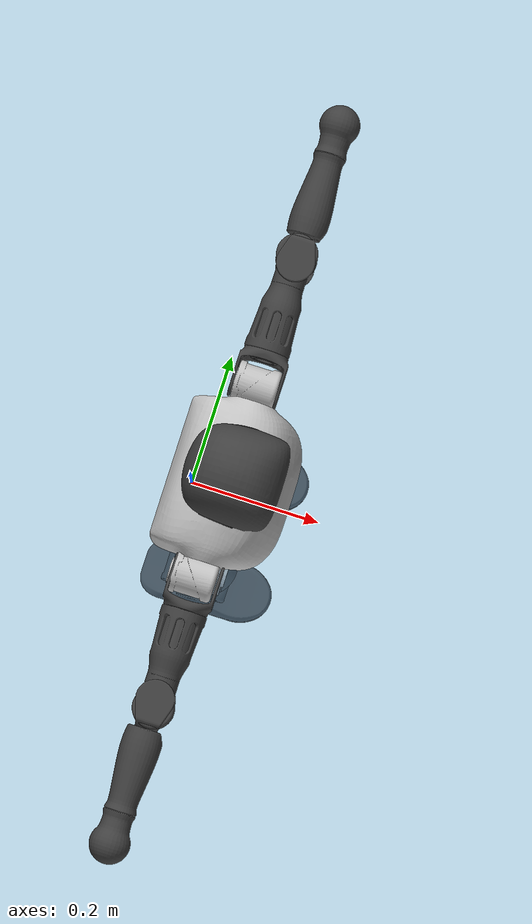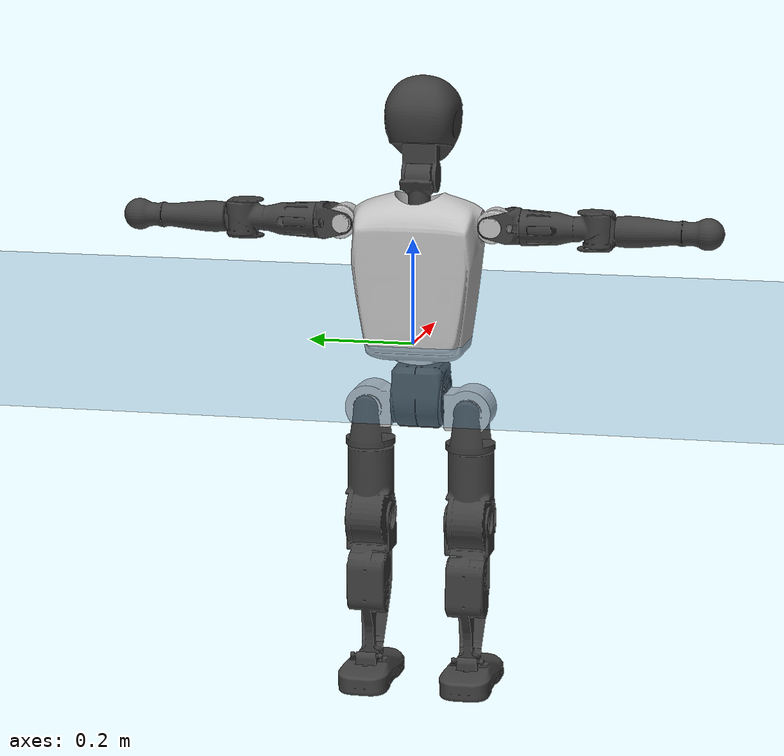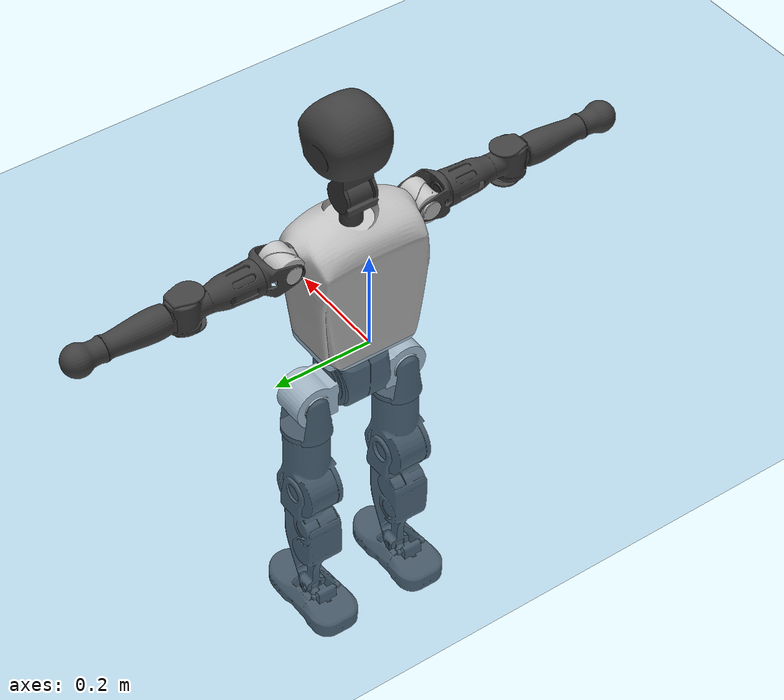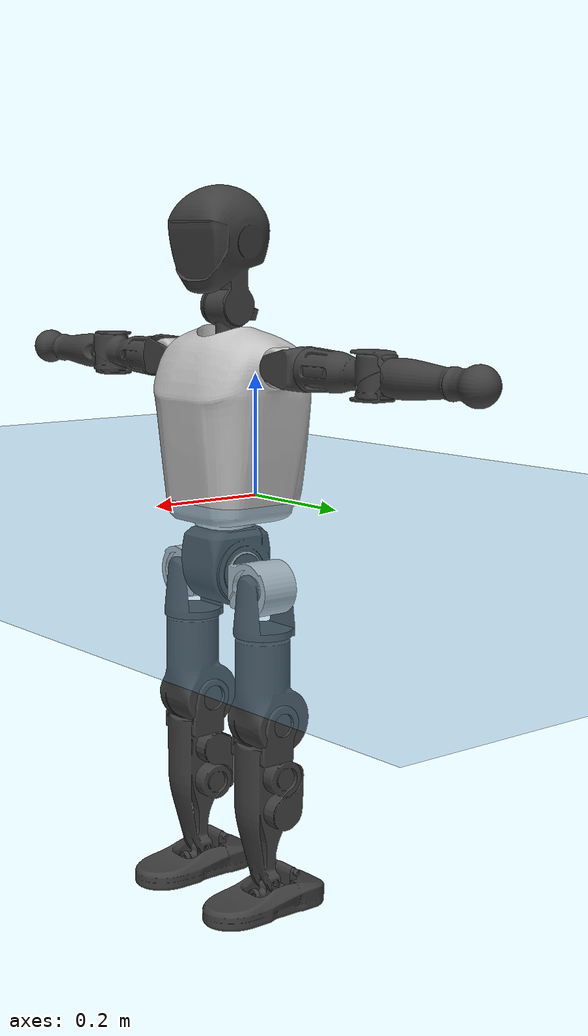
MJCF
<mujoco model="T1">
  <compiler angle="radian" assetdir="assets" balanceinertia="true" inertiafromgeom="false"/>

  <option timestep="0.005" density="1.2" viscosity="2e-05"/>

  <size nkey="1"/>

  <visual>
    <quality shadowsize="8192"/>
    <map shadowclip="0.5"/>
  </visual>

  <default>
    <default class="/">
      <joint armature="0.01" damping="0.01" frictionloss="0.1"/>
      <geom contype="0" conaffinity="0" group="1" solref="-1000 -80"/>
      <site size="0.01 0.005 0.005" group="5"/>
      <general forcelimited="true" biastype="affine" gainprm="25" biasprm="0 -25 -0.6"/>
      <default class="t1">
        <geom rgba="0.25 0.25 0.25 1"/>
        <default class="visual">
          <geom type="mesh" group="2"/>
        </default>
        <default class="collision">
          <geom group="3"/>
        </default>
        <default class="foot">
          <geom size="0.1115 0.05 0.015" type="box" condim="6" group="4" priority="1" solimp="0.015 1 0.015"/>
        </default>
        <default class="reward_collision_sphere">
          <geom group="5" rgba="1 0 0 1"/>
        </default>
      </default>
    </default>
  </default>

  <asset>
    <texture type="skybox" colorspace="auto" name="//unnamed_texture_0" builtin="gradient" rgb1="0.95 0.95 0.95" rgb2="0.95 0.95 0.95" width="100" height="600"/>
    <texture type="2d" colorspace="auto" name="texplane" builtin="checker" rgb1="0.345 0.575 0.748" rgb2="0.345 0.575 0.748" markrgb="1 1 1" width="512" height="512"/>
    <material name="MatPlane" class="/" texture="texplane" texuniform="true" texrepeat="2 2" specular="0.9"/>
    <mesh name="Trunk" class="/" file="Trunk.stl"/>
    <mesh name="H1" class="/" file="H1.stl"/>
    <mesh name="H2" class="/" file="H2.stl"/>
    <mesh name="AL1" class="/" file="AL1.stl"/>
    <mesh name="AL2" class="/" file="AL2.stl"/>
    <mesh name="AL3" class="/" file="AL3.stl"/>
    <mesh name="left_hand_link" class="/" file="left_hand_link.stl"/>
    <mesh name="AR1" class="/" file="AR1.stl"/>
    <mesh name="AR2" class="/" file="AR2.stl"/>
    <mesh name="AR3" class="/" file="AR3.stl"/>
    <mesh name="right_hand_link" class="/" file="right_hand_link.stl"/>
    <mesh name="Waist" class="/" file="Waist.stl"/>
    <mesh name="Hip_Pitch_Left" class="/" file="Hip_Pitch_Left.stl"/>
    <mesh name="Hip_Roll_Left" class="/" file="Hip_Roll_Left.stl"/>
    <mesh name="Hip_Yaw_Left" class="/" file="Hip_Yaw_Left.stl"/>
    <mesh name="Shank_Left" class="/" file="Shank_Left.stl"/>
    <mesh name="Ankle_Cross_Left" class="/" file="Ankle_Cross_Left.stl"/>
    <mesh name="left_foot_link" class="/" file="left_foot_link.stl"/>
    <mesh name="Hip_Pitch_Right" class="/" file="Hip_Pitch_Right.stl"/>
    <mesh name="Hip_Roll_Right" class="/" file="Hip_Roll_Right.stl"/>
    <mesh name="Hip_Yaw_Right" class="/" file="Hip_Yaw_Right.stl"/>
    <mesh name="Shank_Right" class="/" file="Shank_Right.stl"/>
    <mesh name="Ankle_Cross_Right" class="/" file="Ankle_Cross_Right.stl"/>
    <mesh name="right_foot_link" class="/" file="right_foot_link.stl"/>
  </asset>

  <worldbody>
    <geom name="floor" class="/" size="100 100 0.125" type="plane" group="0" material="MatPlane"/>
    <light name="toplight_shadow" class="/" pos="0 0 5" dir="0.0990148 0.0990148 -0.990148" type="directional" ambient="0.04 0.04 0.04" diffuse="0.55 0.55 0.55" specular="0.12 0.12 0.12"/>
    <light name="toplight_fill" class="/" pos="0 0 5" dir="0.0990148 0.0990148 -0.990148" type="directional" castshadow="false" ambient="0.04 0.04 0.04" diffuse="0.3 0.3 0.3" specular="0.08 0.08 0.08"/>
    <body name="trunk" childclass="t1" pos="8.08908e-05 6.91166e-05 0.00052729" quat="1 -0.000295237 -0.000300823 -0.000581245">
      <inertial pos="0.0514327 -5.00118e-05 0.107541" quat="0.999963 0.000836608 -0.00569407 0.00644364" mass="10.1691" diaginertia="0.0687317 0.0490613 0.0633339"/>
      <joint name="//unnamed_joint_0" type="free" armature="0" damping="0" frictionloss="0"/>
      <geom name="//unnamed_geom_1" class="visual" rgba="0.76 0.76 0.76 1" mesh="Trunk"/>
      <geom name="//unnamed_geom_2" class="collision" size="0.0717157 0.0956209 0.143431" pos="0.0560029 0 0.122499" type="box"/>
      <geom name="//unnamed_geom_3" class="reward_collision_sphere" size="0.109964" pos="0.0560029 0 0.102083"/>
      <geom name="//unnamed_geom_4" class="reward_collision_sphere" size="0.0143431" pos="0.0560029 0.0777256 0"/>
      <geom name="//unnamed_geom_5" class="reward_collision_sphere" size="0.0143431" pos="0.0560029 -0.0777256 0"/>
      <geom name="//unnamed_geom_6" class="reward_collision_sphere" size="0.0143431" pos="0.0560029 0.0978428 0.183749"/>
      <geom name="//unnamed_geom_7" class="reward_collision_sphere" size="0.0143431" pos="0.0560029 -0.0978428 0.183749"/>
      <site name="imu" pos="0.00632997 -0.000379076 -0.00591843" size="0.00956209"/>
      <camera name="track" pos="0 -1.82884 0" quat="0.707107 0.707107 0 0" mode="trackcom"/>
      <camera name="ego_camera" pos="0.113872 0 0.428748" quat="-0.5 -0.5 0.5 0.5"/>
      <body name="H1" pos="0.0557471 -0.000481903 0.245553" quat="1 0.000175778 -0.000129755 7.53234e-05">
        <inertial pos="-0.000671941 -0.00190187 0.0586214" quat="0.763448 -0.0130038 0.00168581 0.645737" mass="0.386855" diaginertia="0.000169239 0.000140303 0.000166521"/>
        <joint name="AAHead_yaw" pos="0 0 0" axis="0.00267671 0.000194911 0.999996" range="-1.54372 1.58091" armature="0.0107147" damping="0.0111792" frictionloss="0.106535"/>
        <geom name="//unnamed_geom_8" class="visual" mesh="H1"/>
        <body name="H2" pos="-0.00027192 -0.00286233 0.0642288" quat="1 -0.000124452 -0.000247565 -0.000262785">
          <inertial pos="0.0081824 -0.00151127 0.0981122" quat="0.989504 0.0987778 -0.0760185 -0.073116" mass="0.552441" diaginertia="0.00145386 0.00119905 0.00191704"/>
          <joint name="Head_pitch" pos="0 0 0" axis="0.000948368 -0.999984 0.00559831" range="-1.21644 0.368221" armature="0.00978426" damping="0" frictionloss="0.095145"/>
          <geom name="//unnamed_geom_9" class="visual" mesh="H2"/>
          <geom name="//unnamed_geom_10" class="collision" size="0.0764967" pos="0.00933381 0 0.112291"/>
          <geom name="//unnamed_geom_11" class="reward_collision_sphere" size="0.0860588" pos="0.0186676 0 0.102083"/>
        </body>
      </body>
      <body name="AL1" pos="0.0539912 0.0989874 0.221356" quat="0.999999 -0.00108171 -9.24923e-05 0.000549506">
        <inertial pos="-0.00181332 0.0412819 -0.000492324" quat="0.504149 0.496076 -0.504254 0.495449" mass="0.462725" diaginertia="0.000967144 0.000800155 0.000316015"/>
        <joint name="Left_Shoulder_Pitch" pos="0 0 0" axis="0.00352762 0.999946 0.0097538" stiffness="0.00313968" range="-3.31103 1.27191" armature="0.00966623" damping="0" frictionloss="0.0957967"/>
        <geom name="//unnamed_geom_12" class="visual" rgba="0.76 0.76 0.76 1" mesh="AL1"/>
        <body name="AL2" pos="-0.000862539 0.0426029 -0.000746446" quat="1 -0.000159975 -0.000409508 -7.76934e-05">
          <inertial pos="0.00419045 0.0370362 -0.000175553" quat="0.486552 0.512582 -0.488878 0.511395" mass="0.140319" diaginertia="0.000287451 0.000220153 0.000196802"/>
          <joint name="Left_Shoulder_Roll" pos="0 0 0" axis="-0.999999 -0.000880742 0.00142445" range="-1.57591 1.74804" armature="0.0107663" damping="0.00911143" frictionloss="0.0956826"/>
          <geom name="//unnamed_geom_13" class="visual" mesh="AL2"/>
          <body name="AL3" pos="-4.04566e-05 0.0556118 5.97814e-05" quat="1 0.000276502 -0.000463756 0.000136935">
            <inertial pos="0.00173812 0.0756068 -0.00118004" quat="0.705668 0.708543 -0.000461978 -0.00059621" mass="0.84828" diaginertia="0.00915283 0.0080666 0.000661535"/>
            <joint name="Left_Elbow_Pitch" pos="0 0 0" axis="-0.00135194 -0.999999 -0.00079669" range="-2.32466 2.28294" armature="0.010853" damping="0.0118253" frictionloss="0.0937495"/>
            <geom name="//unnamed_geom_14" class="visual" mesh="AL3"/>
            <geom name="//unnamed_geom_15" class="collision" size="0.0286863 0.0717157" pos="0 0.0457209 0" quat="0.707105 0.707108 0 0" type="cylinder"/>
            <geom name="//unnamed_geom_16" class="reward_collision_sphere" size="0.0344235"/>
            <body name="left_hand_link" pos="0.00167213 0.133943 -0.000321431" quat="0.999999 -0.000373961 0.00109331 0.000402009">
              <inertial pos="-0.00254756 0.0997682 0.000499609" quat="0.711037 0.703152 -0.000406117 0.00180978" mass="0.286414" diaginertia="0.00560801 0.00514627 0.000244492"/>
              <joint name="Left_Elbow_Yaw" pos="0 0 0" axis="0.000680321 0.00121611 0.999999" range="-2.45122 -0.0477053" armature="0.00966503" damping="0.0109073" frictionloss="0.0957144"/>
              <geom name="//unnamed_geom_17" class="visual" mesh="left_hand_link"/>
              <geom name="//unnamed_geom_18" class="collision" size="0.0286863 0.0836683" pos="0 0.118874 0" quat="0.707105 0.707108 0 0" type="cylinder"/>
              <geom name="//unnamed_geom_19" class="reward_collision_sphere" size="0.0478104"/>
              <geom name="//unnamed_geom_20" class="reward_collision_sphere" size="0.0334673" pos="0 0.100586 0"/>
              <geom name="//unnamed_geom_21" class="reward_collision_sphere" size="0.0334673" pos="0 0.1966 0"/>
            </body>
          </body>
        </body>
      </body>
      <body name="AR1" pos="0.0524663 -0.0984496 0.221999" quat="1 -0.000424394 0.000748845 -1.06136e-05">
        <inertial pos="-0.00158288 -0.0439913 0.000689465" quat="0.503572 0.497858 -0.504584 0.493911" mass="0.445816" diaginertia="0.000946634 0.000800319 0.000313514"/>
        <joint name="Right_Shoulder_Pitch" pos="0 0 0" axis="0.00285126 -0.999906 0.0134447" range="-1.23006 3.30939" armature="0.0105712" damping="0.0141828" frictionloss="0.0969057"/>
        <geom name="//unnamed_geom_22" class="visual" rgba="0.76 0.76 0.76 1" mesh="AR1"/>
        <body name="AR2" pos="0.00203999 -0.040847 -0.000443416" quat="0.999999 -0.000811391 -0.00100305 -0.000179374">
          <inertial pos="0.00294181 -0.034086 0.00138321" quat="0.51258 0.489399 -0.510745 0.486714" mass="0.135971" diaginertia="0.000284403 0.000227517 0.000198316"/>
          <joint name="Right_Shoulder_Roll" pos="0 0 0" axis="-0.999981 0.00269037 0.00545893" range="-1.75685 1.55216" armature="0.00937291" damping="0.00455649" frictionloss="0.108099"/>
          <geom name="//unnamed_geom_23" class="visual" mesh="AR2"/>
          <body name="AR3" pos="0.000194978 -0.0567364 -0.00261086" quat="1 -1.81284e-05 -1.70221e-05 8.5838e-06">
            <inertial pos="0.000199167 -0.0804925 0.000746382" quat="0.710687 0.70344 -0.00975613 0.000724839" mass="0.88949" diaginertia="0.00907775 0.00825482 0.000704516"/>
            <joint name="Right_Elbow_Pitch" pos="0 0 0" axis="0.00561972 0.999947 0.00857381" range="-2.3144 2.26026" armature="0.00834762" damping="0.00812524" frictionloss="0.0996596"/>
            <geom name="//unnamed_geom_24" class="visual" mesh="AR3"/>
            <geom name="//unnamed_geom_25" class="collision" size="0.0286863 0.0717157" pos="0 -0.0457209 0" quat="0.707105 0.707108 0 0" type="cylinder"/>
            <geom name="//unnamed_geom_26" class="reward_collision_sphere" size="0.0344235"/>
            <body name="right_hand_link" pos="-0.000888591 -0.13462 -0.00164735" quat="1 -0.000540029 -0.000245825 0.000541794">
              <inertial pos="0.000122992 -0.0997613 0.00345624" quat="0.70635 0.707863 0.000628705 0.000181296" mass="0.288652" diaginertia="0.00577498 0.0052471 0.000238801"/>
              <joint name="Right_Elbow_Yaw" pos="0 0 0" axis="0.000344484 -0.000326433 1" range="-0.0114691 2.45564" armature="0.0106936" damping="0" frictionloss="0.102194"/>
              <geom name="//unnamed_geom_27" class="visual" mesh="right_hand_link"/>
              <geom name="//unnamed_geom_28" class="collision" size="0.0286863 0.0836683" pos="0 -0.118874 0" quat="0.707105 0.707108 0 0" type="cylinder"/>
              <geom name="//unnamed_geom_29" class="reward_collision_sphere" size="0.0478104"/>
              <geom name="//unnamed_geom_30" class="reward_collision_sphere" size="0.0334673" pos="0 -0.100586 0"/>
              <geom name="//unnamed_geom_31" class="reward_collision_sphere" size="0.0334673" pos="0 -0.1966 0"/>
            </body>
          </body>
        </body>
      </body>
      <body name="Waist" pos="0.058572 -0.00328004 -0.115082" quat="1 5.791e-05 -2.20573e-05 0.000101789">
        <inertial pos="0.000155053 0.000364991 0.00698068" quat="0.981833 0.00165607 -0.189587 0.0076107" mass="2.18678" diaginertia="0.00366941 0.00325883 0.00510419"/>
        <joint name="Waist" pos="0 0 0" axis="0.00533941 0.00990543 0.999937" range="-1.58184 1.52569" armature="0.0098082" damping="0.0130003" frictionloss="0.105753"/>
        <geom name="//unnamed_geom_32" class="visual" mesh="Waist"/>
        <body name="Hip_Pitch_Left" pos="0.00102877 0.0976504 2.37218e-05" quat="1 0.000254589 0.000115094 4.2945e-05">
          <inertial pos="0.000505781 -0.00713925 -0.0192628" quat="0.97505 0.221627 0.0115619 0.0051087" mass="0.894713" diaginertia="0.00127853 0.000967016 0.00138971"/>
          <joint name="Left_Hip_Pitch" pos="0 0 0" axis="0.00349501 0.999887 0.0146195" range="-1.80274 1.62116" armature="0.0096213" damping="0" frictionloss="0.0941476"/>
          <geom name="//unnamed_geom_33" class="visual" rgba="0.76 0.76 0.76 1" mesh="Hip_Pitch_Left"/>
          <body name="Hip_Roll_Left" pos="0.00117798 0.00236278 -0.0192119" quat="0.999999 0.000855686 0.00102261 -0.000709248">
            <inertial pos="-0.000688826 -0.000199705 -0.0552628" quat="0.706396 -0.00639194 -0.0109851 0.707703" mass="0.329117" diaginertia="0.00122966 0.00094504 0.000551674"/>
            <joint name="Left_Hip_Roll" pos="0 0 0" axis="-0.999947 0.00951891 0.00380781" stiffness="0.00460992" range="-1.5798 0.201765" armature="0.00962443" damping="0.0120532" frictionloss="0.09901"/>
            <geom name="//unnamed_geom_34" class="visual" mesh="Hip_Roll_Left"/>
            <geom name="//unnamed_geom_35" class="reward_collision_sphere" size="0.0525915"/>
            <body name="Hip_Yaw_Left" pos="0.000122332 -0.000470463 -0.083833" quat="1 -0.000165556 -0.000133519 0.000177277">
              <inertial pos="-0.00572497 -0.00161866 -0.0914812" quat="0.694252 -0.0384266 -0.0204857 0.718414" mass="1.85222" diaginertia="0.0180991 0.0157692 0.00279283"/>
              <joint name="Left_Hip_Yaw" pos="0 0 0" axis="-0.00305938 -0.00191546 -0.999993" range="-1.03843 1.00066" armature="0.00955907" damping="0.00757437" frictionloss="0.0974404"/>
              <geom name="//unnamed_geom_36" class="visual" mesh="Hip_Yaw_Left"/>
              <geom name="//unnamed_geom_37" class="collision" size="0.0478104 0.0764967" type="cylinder"/>
              <body name="Shank_Left" pos="-0.0113808 -0.00197584 -0.136998" quat="1 1.01447e-05 -1.71272e-05 3.72736e-05">
                <inertial pos="-0.00481557 -0.00100107 -0.127409" quat="0.997537 -0.00217084 -0.0321367 0.0623082" mass="1.52757" diaginertia="0.0247644 0.0221919 0.00201244"/>
                <joint name="Left_Knee_Pitch" pos="0 0 0" axis="0.0065612 0.999978 -0.000467297" range="-0.0203042 2.34016" armature="0.0106585" damping="0.000303308" frictionloss="0.100403"/>
                <geom name="//unnamed_geom_38" class="visual" mesh="Shank_Left"/>
                <geom name="//unnamed_geom_39" class="collision" size="0.0478104 0.0717157" pos="0 0 -0.122499" type="cylinder"/>
                <geom name="//unnamed_geom_40" class="reward_collision_sphere" size="0.0621536"/>
                <body name="Ankle_Cross_Left" pos="0.00112368 0.00132464 -0.288156" quat="0.999999 -0.000576792 0.000355487 -0.000972682">
                  <inertial pos="-0.00304519 -0.00235378 -0.00820369" quat="0.447458 0.545138 0.552859 0.443793" mass="0.0634583" diaginertia="2.0462e-05 1.67401e-05 1.26903e-05"/>
                  <joint name="Left_Ankle_Pitch" pos="0 0 0" axis="-0.00430275 0.999985 -0.00353015" range="-0.876891 0.328579" armature="0.0100667" damping="0.00591973" frictionloss="0.0975574"/>
                  <geom name="//unnamed_geom_41" class="visual" mesh="Ankle_Cross_Left"/>
                  <body name="left_foot_link" pos="-0.00203859 -0.00261708 -0.0118527" quat="1 4.25068e-05 2.55857e-05 1.17635e-05">
                    <inertial pos="0.00195533 -0.000413283 -0.00665654" quat="0.00433768 0.618858 -0.000649647 0.78549" mass="0.609249" diaginertia="0.00195498 0.00153304 0.00247887"/>
                    <joint name="Left_Ankle_Roll" pos="0 0 0" axis="-1 0.00026013 6.72399e-05" stiffness="0.0041047" range="-0.436402 0.44072" armature="0.00839021" damping="0.00648438" frictionloss="0.0962955"/>
                    <geom name="//unnamed_geom_42" class="visual" mesh="left_foot_link"/>
                    <geom name="left_foot" class="foot" size="0.106796 0.0473631 0.0136823" pos="0.00933381 0 -0.0153124"/>
                    <geom name="//unnamed_geom_44" class="reward_collision_sphere" size="0.0497229" pos="0.00933381 0 -0.0153124"/>
                    <geom name="//unnamed_geom_45" class="reward_collision_sphere" size="0.0286863" pos="0.0886712 -0.0210316 -0.0153124"/>
                    <geom name="//unnamed_geom_46" class="reward_collision_sphere" size="0.0286863" pos="-0.0653367 -0.0210316 -0.0153124"/>
                    <site name="left_foot" class="foot" pos="0.00933381 0 -0.0153124" size="0.00956209"/>
                  </body>
                </body>
              </body>
            </body>
          </body>
        </body>
        <body name="Hip_Pitch_Right" pos="-0.00221001 -0.0971323 -0.000736714" quat="0.999999 -0.00105591 -0.000913182 -0.000553475">
          <inertial pos="0.000885723 0.00426265 -0.0181353" quat="0.973845 -0.226769 0.0132028 -0.00522127" mass="0.8726" diaginertia="0.00123878 0.000913108 0.00135899"/>
          <joint name="Right_Hip_Pitch" pos="0 0 0" axis="0.0025452 -0.999996 0.000751702" range="-1.59771 1.79697" armature="0.0096788" damping="0.0132092" frictionloss="0.107819"/>
          <geom name="//unnamed_geom_47" class="visual" rgba="0.76 0.76 0.76 1" mesh="Hip_Pitch_Right"/>
          <body name="Hip_Roll_Right" pos="-0.000796546 0.000850198 -0.0194422" quat="1 -1.64577e-05 1.98199e-05 2.26368e-05">
            <inertial pos="-0.00125152 0.00246661 -0.0573094" quat="0.70774 -0.00506842 -0.00408764 0.706443" mass="0.335947" diaginertia="0.00124506 0.00096054 0.00056527"/>
            <joint name="Right_Hip_Roll" pos="0 0 0" axis="-0.999991 0.00071871 -0.00411228" stiffness="0.00224064" range="-0.210018 1.5675" armature="0.0093625" damping="0.00814823" frictionloss="0.0957127"/>
            <geom name="//unnamed_geom_48" class="visual" mesh="Hip_Roll_Right"/>
            <geom name="//unnamed_geom_49" class="reward_collision_sphere" size="0.0525915"/>
            <body name="Hip_Yaw_Right" pos="-0.000328044 -0.00126705 -0.0819577" quat="1 0.000116795 5.37787e-07 -0.000349828">
              <inertial pos="-0.00582299 -0.00105171 -0.0922339" quat="0.714344 -0.0321586 -0.0335426 0.698251" mass="1.86974" diaginertia="0.0185228 0.016055 0.00291603"/>
              <joint name="Right_Hip_Yaw" pos="0 0 0" axis="0.00611748 0.00206091 -0.999979" stiffness="0.00487545" range="-0.98324 0.962602" armature="0.00832684" damping="0.017629" frictionloss="0.107282"/>
              <geom name="//unnamed_geom_50" class="visual" mesh="Hip_Yaw_Right"/>
              <geom name="//unnamed_geom_51" class="collision" size="0.0478104 0.0764967" type="cylinder"/>
              <body name="Shank_Right" pos="-0.0131176 0.00208355 -0.136865" quat="0.999999 -0.000358224 0.00109483 0.000344058">
                <inertial pos="-0.00572791 0.0015118 -0.122703" quat="0.999224 -0.00615435 -0.0207488 -0.0329147" mass="1.52946" diaginertia="0.0247453 0.022194 0.00224882"/>
                <joint name="Right_Knee_Pitch" pos="0 0 0" axis="0.00372391 -0.999988 -0.00313908" range="-2.30011 -0.045376" armature="0.00974154" damping="0.013308" frictionloss="0.0996211"/>
                <geom name="//unnamed_geom_52" class="visual" mesh="Shank_Right"/>
                <geom name="//unnamed_geom_53" class="collision" size="0.0478104 0.0717157" pos="0 0 -0.122499" type="cylinder"/>
                <geom name="//unnamed_geom_54" class="reward_collision_sphere" size="0.0621536"/>
                <body name="Ankle_Cross_Right" pos="0.000999999 -0.00269649 -0.286307" quat="0.999999 0.000337222 0.00120466 0.00038155">
                  <inertial pos="-0.00260838 0.00113301 -0.00658728" quat="0.443574 0.550906 0.551225 0.442601" mass="0.0642826" diaginertia="2.02866e-05 1.64336e-05 1.22683e-05"/>
                  <joint name="Right_Ankle_Pitch" pos="0 0 0" axis="0.00750936 -0.99997 0.0020493" stiffness="0.000627446" range="-0.390996 0.878124" armature="0.0097869" damping="0.00807067" frictionloss="0.0965969"/>
                  <geom name="//unnamed_geom_55" class="visual" mesh="Ankle_Cross_Right"/>
                  <body name="right_foot_link" pos="0.000728763 -0.00310942 -0.011978" quat="1 -0.000126687 -0.000162762 0.000243113">
                    <inertial pos="-0.000629431 -0.00118873 -0.0112282" quat="-0.00210943 0.620637 0.00452405 0.784082" mass="0.606764" diaginertia="0.00192328 0.00152186 0.00239379"/>
                    <joint name="Right_Ankle_Roll" pos="0 0 0" axis="-0.999991 -5.38999e-05 -0.00413893" range="-0.386501 0.446502" armature="0.0105505" damping="0.0065853" frictionloss="0.089671"/>
                    <geom name="//unnamed_geom_56" class="visual" mesh="right_foot_link"/>
                    <geom name="right_foot" class="foot" size="0.0871692 0.0465874 0.0134437" pos="0.00933381 0 -0.0153124"/>
                    <geom name="//unnamed_geom_58" class="reward_collision_sphere" size="0.0382484"/>
                    <geom name="//unnamed_geom_59" class="reward_collision_sphere" size="0.0286863" pos="0.00933381 0 -0.0153124"/>
                    <geom name="//unnamed_geom_60" class="reward_collision_sphere" size="0.0286863" pos="0.0886712 0.0210316 -0.0153124"/>
                    <geom name="//unnamed_geom_61" class="reward_collision_sphere" size="0.0286863" pos="-0.0653367 0.0210316 -0.0153124"/>
                    <site name="right_foot" class="foot" pos="0.00933381 0 -0.0153124" size="0.00956209"/>
                  </body>
                </body>
              </body>
            </body>
          </body>
        </body>
      </body>
    </body>
  </worldbody>

  <contact>
    <pair class="/" geom1="floor" geom2="left_foot" name="//unnamed_contact_0"/>
    <pair class="/" geom1="floor" geom2="right_foot" name="//unnamed_contact_1"/>
  </contact>

  <actuator>
    <general name="AAHead_yaw" class="/" joint="AAHead_yaw" forcerange="-6.60094 6.60094" gainprm="24.5034" biasprm="0 -24.5034 -0.583005"/>
    <general name="Head_pitch" class="/" joint="Head_pitch" forcerange="-6.97368 6.97368" gainprm="24.5034" biasprm="0 -24.5034 -0.583005"/>
    <general name="Left_Shoulder_Pitch" class="/" joint="Left_Shoulder_Pitch" forcerange="-17.572 17.572" gainprm="24.5034" biasprm="0 -24.5034 -0.583005"/>
    <general name="Left_Shoulder_Roll" class="/" joint="Left_Shoulder_Roll" forcerange="-18.4443 18.4443" gainprm="24.5034" biasprm="0 -24.5034 -0.583005"/>
    <general name="Left_Elbow_Pitch" class="/" joint="Left_Elbow_Pitch" forcerange="-17.037 17.037" gainprm="24.5034" biasprm="0 -24.5034 -0.583005"/>
    <general name="Left_Elbow_Yaw" class="/" joint="Left_Elbow_Yaw" forcerange="-17.5718 17.5718" gainprm="24.5034" biasprm="0 -24.5034 -0.583005"/>
    <general name="Right_Shoulder_Pitch" class="/" joint="Right_Shoulder_Pitch" forcerange="-17.2729 17.2729" gainprm="24.5034" biasprm="0 -24.5034 -0.583005"/>
    <general name="Right_Shoulder_Roll" class="/" joint="Right_Shoulder_Roll" forcerange="-17.8675 17.8675" gainprm="24.5034" biasprm="0 -24.5034 -0.583005"/>
    <general name="Right_Elbow_Pitch" class="/" joint="Right_Elbow_Pitch" forcerange="-16.5603 16.5603" gainprm="24.5034" biasprm="0 -24.5034 -0.583005"/>
    <general name="Right_Elbow_Yaw" class="/" joint="Right_Elbow_Yaw" forcerange="-17.847 17.847" gainprm="24.5034" biasprm="0 -24.5034 -0.583005"/>
    <general name="Waist" class="/" joint="Waist" forcerange="-26.6729 26.6729" gainprm="24.5034" biasprm="0 -24.5034 -0.583005"/>
    <general name="Left_Hip_Pitch" class="/" joint="Left_Hip_Pitch" forcerange="-44.574 44.574" gainprm="24.5034" biasprm="0 -24.5034 -0.583005"/>
    <general name="Left_Hip_Roll" class="/" joint="Left_Hip_Roll" forcerange="-28.4487 28.4487" gainprm="24.5034" biasprm="0 -24.5034 -0.583005"/>
    <general name="Left_Hip_Yaw" class="/" joint="Left_Hip_Yaw" forcerange="-29.5386 29.5386" gainprm="24.5034" biasprm="0 -24.5034 -0.583005"/>
    <general name="Left_Knee_Pitch" class="/" joint="Left_Knee_Pitch" forcerange="-52.8255 52.8255" gainprm="24.5034" biasprm="0 -24.5034 -0.583005"/>
    <general name="Left_Ankle_Pitch" class="/" joint="Left_Ankle_Pitch" forcerange="-20.9962 20.9962" gainprm="24.5034" biasprm="0 -24.5034 -0.583005"/>
    <general name="Left_Ankle_Roll" class="/" joint="Left_Ankle_Roll" forcerange="-12.9495 12.9495" gainprm="24.5034" biasprm="0 -24.5034 -0.583005"/>
    <general name="Right_Hip_Pitch" class="/" joint="Right_Hip_Pitch" forcerange="-43.4601 43.4601" gainprm="24.5034" biasprm="0 -24.5034 -0.583005"/>
    <general name="Right_Hip_Roll" class="/" joint="Right_Hip_Roll" forcerange="-26.6433 26.6433" gainprm="24.5034" biasprm="0 -24.5034 -0.583005"/>
    <general name="Right_Hip_Yaw" class="/" joint="Right_Hip_Yaw" forcerange="-31.3837 31.3837" gainprm="24.5034" biasprm="0 -24.5034 -0.583005"/>
    <general name="Right_Knee_Pitch" class="/" joint="Right_Knee_Pitch" forcerange="-55.1994 55.1994" gainprm="24.5034" biasprm="0 -24.5034 -0.583005"/>
    <general name="Right_Ankle_Pitch" class="/" joint="Right_Ankle_Pitch" forcerange="-19.1461 19.1461" gainprm="24.5034" biasprm="0 -24.5034 -0.583005"/>
    <general name="Right_Ankle_Roll" class="/" joint="Right_Ankle_Roll" forcerange="-14.5243 14.5243" gainprm="24.5034" biasprm="0 -24.5034 -0.583005"/>
  </actuator>

  <sensor>
    <gyro site="imu" name="imu_angular_velocity"/>
    <velocimeter site="imu" name="imu_linear_velocity"/>
    <framelinvel objtype="site" objname="left_foot" name="left_foot_global_linear_velocity"/>
    <framelinvel objtype="site" objname="right_foot" name="right_foot_global_linear_velocity"/>
  </sensor>

  <keyframe>
    <key name="home" qpos="0 0 0.6385 1 0 0 0 0 0 0 1.4 0 -0.4 0 -1.4 0 0.4 0 -0.4 0 0 0.8 -0.4 0 0.4 0 0 -0.8 0.4 0"/>
  </keyframe>
</mujoco>
